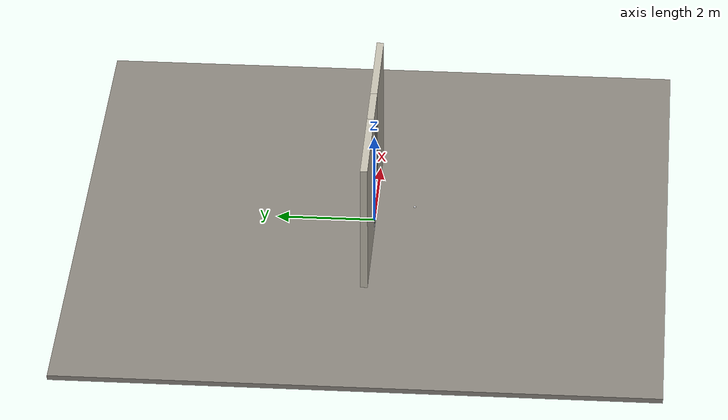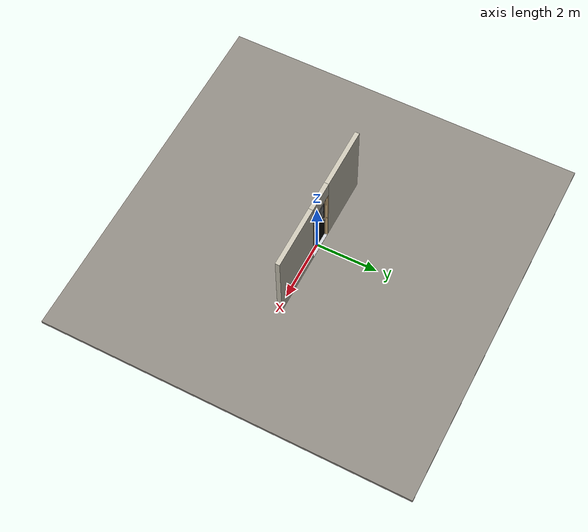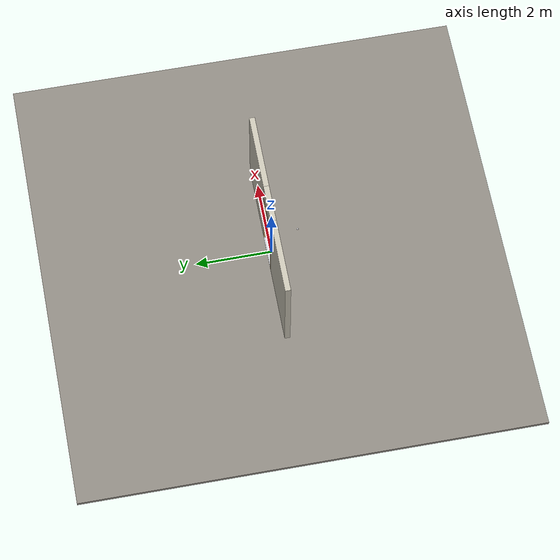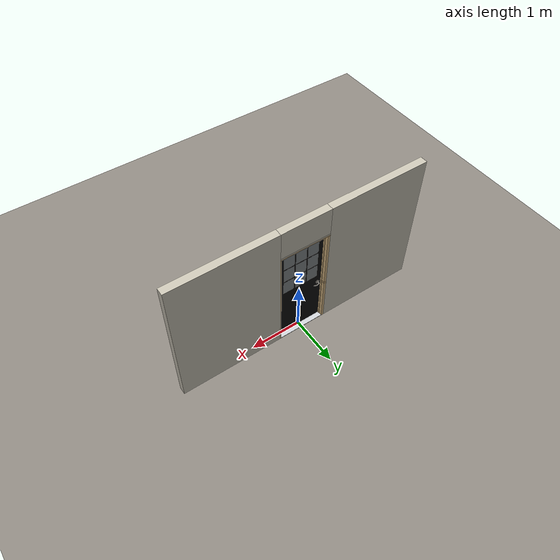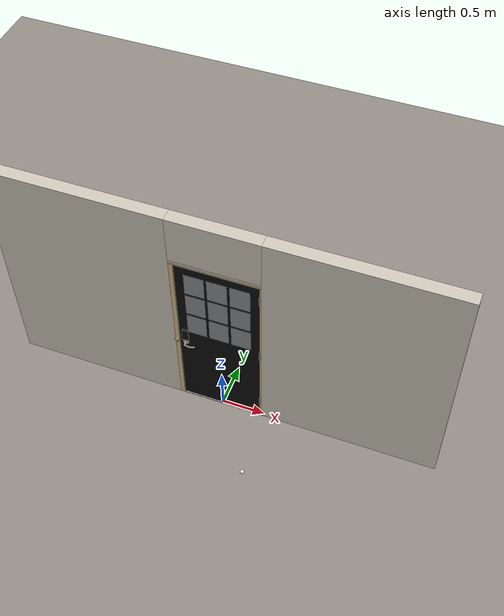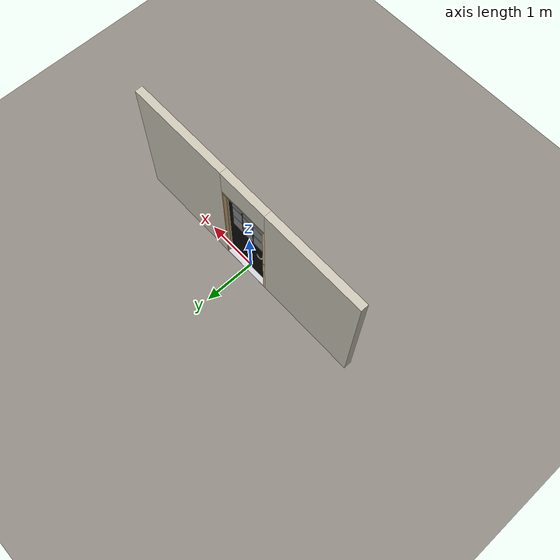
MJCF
<?xml version="1.0" ?>
<mujoco model="db0721_swing_single_simple">
  <compiler angle="radian" meshdir="../../hardware" texturedir="../../textures" autolimits="true" inertiafromgeom="false"/>
  <option timestep="0.002" integrator="implicitfast" cone="elliptic" impratio="10" noslip_iterations="3">
    <flag multiccd="enable"/>
  </option>
  <size memory="16M"/>
  <default>
    <geom condim="4" solref="0.005 1" solimp="0.95 0.99 0.001"/>
    <joint solreflimit="0.005 1" solimplimit="0.95 0.99 0.001"/>
    <tendon solreflimit="0.005 1"/>
    <equality solref="0.002 1"/>
  </default>
  <visual>
    <headlight ambient="0.4 0.4 0.4" diffuse="0.7 0.7 0.7" specular="0.2 0.2 0.2"/>
    <quality shadowsize="4096"/>
    <map znear="0.01" zfar="60"/>
  </visual>
  <asset>
    <mesh name="hinge_e22b26c0c1" file="hinge_e22b26c0c1.obj"/>
    <mesh name="hinge_jamb_e1d088f8dc" file="hinge_jamb_e1d088f8dc.obj"/>
    <mesh name="keypad_body_3b2d063948" file="keypad_body_3b2d063948.obj"/>
    <mesh name="lever_a61139b160" file="lever_a61139b160.obj"/>
    <material name="mat_floor" rgba="0.55 0.53 0.5 1" specular="0.2" shininess="0.15" reflectance="0"/>
    <material name="mat_wall" rgba="0.78 0.76 0.7 1" specular="0.2" shininess="0.1" reflectance="0"/>
    <material name="mat_leaf" rgba="0.04 0.04 0.04 1" specular="0.23" shininess="0.61" reflectance="0.02"/>
    <material name="mat_glass" rgba="0.9 0.93 0.95 0.6" specular="0.2" shininess="0.5" reflectance="0.1"/>
    <material name="mat_hinge" rgba="0.65 0.66 0.68 1" specular="0.74" shininess="0.5" reflectance="0.36"/>
    <material name="mat_op_nickel_satin" rgba="0.72 0.7 0.66 1" specular="0.8" shininess="0.65" reflectance="0.4"/>
    <material name="mat_trim" rgba="0.85 0.66 0.3 1" specular="0.8" shininess="0.75" reflectance="0.4"/>
    <material name="mat_keypad" rgba="0.05 0.05 0.05 1" specular="0.38" shininess="0.3" reflectance="0.12"/>
    <material name="mat_key" rgba="0.85 0.85 0.82 1" specular="0.2" shininess="0.5" reflectance="0"/>
    <material name="mat_bolt" rgba="0.85 0.66 0.3 1" specular="0.8" shininess="0.75" reflectance="0.4"/>
    <material name="mat_frame" rgba="0.82 0.7 0.5 1" specular="0.2" shininess="0.45" reflectance="0"/>
    <material name="mat_seal" rgba="0.1 0.1 0.1 1" specular="0.2" shininess="0.1" reflectance="0"/>
    <material name="mat_threshold" rgba="0.8 0.81 0.83 1" specular="0.8" shininess="0.6" reflectance="0.4"/>
    <material name="mat_peephole" rgba="0.85 0.66 0.3 1" specular="0.8" shininess="0.75" reflectance="0.4"/>
    <material name="mat_numbers" rgba="0.05 0.05 0.05 1" specular="0.38" shininess="0.3" reflectance="0.12"/>
    <material name="mat_stop" rgba="0.9 0.9 0.92 1" specular="0.8" shininess="0.9" reflectance="0.4"/>
    <texture name="skybox" type="skybox" builtin="gradient" rgb1="0.6 0.7 0.85" rgb2="0.9 0.92 0.95" width="256" height="256"/>
  </asset>
  <worldbody>
    <light name="sun" pos="1.5 -2.5 4" dir="-0.3 0.5 -0.8" directional="true" diffuse="0.8 0.8 0.8" specular="0.3 0.3 0.3" castshadow="true"/>
    <light name="fill" pos="-1.5 2.5 3" dir="0.3 -0.5 -0.7" directional="true" diffuse="0.35 0.35 0.4" castshadow="false"/>
    <camera name="robot_view" pos="0 -2.594313 1.812087" xyaxes="1 0 0 0 0.26963 0.962964" fovy="52"/>
    <camera name="far_view" pos="0 2.681312 1.812087" xyaxes="-1 0 0 0 -0.26963 0.962964" fovy="52"/>
    <camera name="iso" pos="-2.004737 -2.172262 2.234138" xyaxes="0.741536 -0.670913 0 0.242917 0.268487 0.932151" fovy="46"/>
    <camera name="detail_handle" pos="-0.1169 -0.723 1.245" xyaxes="0.97561 0.219512 0 -0.070934 0.315262 0.94635" fovy="38"/>
    <geom name="floor" type="box" size="6 6 0.05" pos="0 0 -0.05" material="mat_floor" group="0" contype="1" conaffinity="1" friction="0.8 0.005 0.0001" density="2400"/>
    <geom name="wall_left" type="box" size="0.99525 0.0725 1.3735" pos="-1.50475 0.0435 1.3735" material="mat_wall" group="0" contype="1" conaffinity="1" friction="0.6 0.005 0.0001" density="800"/>
    <geom name="wall_right" type="box" size="1.01025 0.0725 1.3735" pos="1.48975 0.0435 1.3735" material="mat_wall" group="0" contype="1" conaffinity="1" friction="0.6 0.005 0.0001" density="800"/>
    <geom name="wall_header" type="box" size="0.4945 0.0725 0.2755" pos="-0.015 0.0435 2.4715" material="mat_wall" group="0" contype="1" conaffinity="1" friction="0.6 0.005 0.0001" density="800"/>
    <geom name="hinge_0_jamb" type="mesh" mesh="hinge_jamb_e1d088f8dc" pos="0.4575 -0.029 0.267" quat="0 0 1 0" material="mat_hinge" group="1" contype="0" conaffinity="0" density="7850"/>
    <geom name="hinge_1_jamb" type="mesh" mesh="hinge_jamb_e1d088f8dc" pos="0.4575 -0.029 1.08" quat="0 0 1 0" material="mat_hinge" group="1" contype="0" conaffinity="0" density="7850"/>
    <geom name="hinge_2_jamb" type="mesh" mesh="hinge_jamb_e1d088f8dc" pos="0.4575 -0.029 1.963" quat="0 0 1 0" material="mat_hinge" group="1" contype="0" conaffinity="0" density="7850"/>
    <geom name="jamb_hinge" type="box" size="0.0095 0.0725 1.0735" pos="0.47 0.0435 1.0735" material="mat_frame" group="0" contype="1" conaffinity="1" friction="0.6 0.005 0.0001" density="400"/>
    <geom name="strike_965_wall_n" type="box" size="0.0245 0.054075 0.0167" pos="-0.485 0.061925 0.965" material="mat_frame" group="0" contype="1" conaffinity="1" friction="0.6 0.005 0.0001" density="400"/>
    <geom name="strike_965_wall_p" type="box" size="0.0245 0.008 0.0167" pos="-0.485 -0.01585 0.965" material="mat_frame" group="0" contype="1" conaffinity="1" friction="0.6 0.005 0.0001" density="400"/>
    <geom name="strike_965_ramp" type="box" size="0.0245 0.01649 0.0167" pos="-0.489636 -0.028673 0.965" quat="0.977148 0 0 -0.212558" material="mat_frame" group="0" contype="1" conaffinity="1" friction="0.12 0.005 0.0001" density="400"/>
    <geom name="strike_965_back" type="box" size="0.01615 0.00785 0.0167" pos="-0.49335 0 0.965" material="mat_frame" group="0" contype="1" conaffinity="1" friction="0.6 0.005 0.0001" density="400"/>
    <geom name="jamb_strike_0" type="box" size="0.0245 0.0725 0.47415" pos="-0.485 0.0435 0.47415" material="mat_frame" group="0" contype="1" conaffinity="1" friction="0.6 0.005 0.0001" density="400"/>
    <geom name="jamb_strike_1" type="box" size="0.0245 0.0725 0.58265" pos="-0.485 0.0435 1.56435" material="mat_frame" group="0" contype="1" conaffinity="1" friction="0.6 0.005 0.0001" density="400"/>
    <geom name="jamb_head" type="box" size="0.4945 0.0725 0.0095" pos="-0.015 0.0435 2.1565" material="mat_frame" group="0" contype="1" conaffinity="1" friction="0.6 0.005 0.0001" density="400"/>
    <geom name="head_stud" type="box" size="0.4945 0.0725 0.015" pos="-0.015 0.0435 2.181" material="mat_wall" group="0" contype="1" conaffinity="1" friction="0.6 0.005 0.0001" density="500"/>
    <geom name="stop_hinge" type="box" size="0.0055 0.016 1.0735" pos="0.455 0.0385 1.0735" material="mat_frame" group="0" contype="1" conaffinity="1" friction="0.6 0.005 0.0001" density="400"/>
    <geom name="stop_strike" type="box" size="0.0055 0.016 1.0735" pos="-0.455 0.0385 1.0735" material="mat_frame" group="0" contype="1" conaffinity="1" friction="0.6 0.005 0.0001" density="400"/>
    <geom name="stop_head" type="box" size="0.4605 0.016 0.0055" pos="0 0.0385 2.1415" material="mat_frame" group="0" contype="1" conaffinity="1" friction="0.6 0.005 0.0001" density="400"/>
    <geom name="seal_hinge" type="box" size="0.004 0.0015 1.0735" pos="0.4575 0.0235 1.0735" material="mat_seal" group="1" contype="0" conaffinity="0" density="1100"/>
    <geom name="seal_strike" type="box" size="0.004 0.0015 1.0735" pos="-0.4575 0.0235 1.0735" material="mat_seal" group="1" contype="0" conaffinity="0" density="1100"/>
    <geom name="seal_head" type="box" size="0.4405 0.0015 0.008" pos="0 0.0235 2.135" material="mat_seal" group="1" contype="0" conaffinity="0" density="1100"/>
    <geom name="threshold" type="box" size="0.4795 0.0725 0.0065" pos="0 0.0435 0.0065" material="mat_threshold" group="0" contype="1" conaffinity="1" friction="0.5 0.005 0.0001" density="2700"/>
    <geom name="floor_stop_dome" type="sphere" size="0.025" pos="0.545135 -0.801201 0" material="mat_stop" group="0" contype="1" conaffinity="1" friction="0.6 0.005 0.0001" density="7000"/>
    <site name="approach_point" pos="0 -1.5 0" quat="1 0 0 0" size="0.05" rgba="0.2 0.9 0.2 0.5" group="4"/>
    <site name="goal_point" pos="0 1.5 0" quat="1 0 0 0" size="0.05" rgba="0.2 0.9 0.2 0.5" group="4"/>
    <site name="door_plane_center" pos="0 0 1.0735" quat="1 0 0 0" size="0.02" rgba="0.2 0.9 0.2 0.5" group="4"/>
    <body name="leaf" pos="0.4605 0 0">
      <inertial pos="-0.451748 -0.001345 1.081532" mass="28.058856" quat="0.500245 -0.500389 -0.499588 -0.499777" diaginertia="2.151440777 10.448249761 12.588842959"/>
      <joint name="leaf_hinge" type="hinge" axis="0 0 1" pos="-0.003 -0.029 0" limited="true" range="0 1.658063" solreflimit="0.02 1" damping="0.318966" frictionloss="2.257697" armature="0.02"/>
      <geom name="leaf_slab" type="box" size="0.457 0.022 1.063" pos="-0.46 0 1.08" material="mat_leaf" group="0" contype="1" conaffinity="1" friction="0.4 0.005 0.0001" density="1"/>
      <geom name="leaf_glass_0" type="box" size="0.10882 0.0228 0.13882" pos="-0.21236 0 1.2826" material="mat_glass" group="1" contype="0" conaffinity="0" density="1"/>
      <geom name="leaf_glass_1" type="box" size="0.10882 0.0228 0.13882" pos="-0.46 0 1.2826" material="mat_glass" group="1" contype="0" conaffinity="0" density="1"/>
      <geom name="leaf_glass_2" type="box" size="0.10882 0.0228 0.13882" pos="-0.70764 0 1.2826" material="mat_glass" group="1" contype="0" conaffinity="0" density="1"/>
      <geom name="leaf_glass_3" type="box" size="0.10882 0.0228 0.13882" pos="-0.21236 0 1.59024" material="mat_glass" group="1" contype="0" conaffinity="0" density="1"/>
      <geom name="leaf_glass_4" type="box" size="0.10882 0.0228 0.13882" pos="-0.46 0 1.59024" material="mat_glass" group="1" contype="0" conaffinity="0" density="1"/>
      <geom name="leaf_glass_5" type="box" size="0.10882 0.0228 0.13882" pos="-0.70764 0 1.59024" material="mat_glass" group="1" contype="0" conaffinity="0" density="1"/>
      <geom name="leaf_glass_6" type="box" size="0.10882 0.0228 0.13882" pos="-0.21236 0 1.89788" material="mat_glass" group="1" contype="0" conaffinity="0" density="1"/>
      <geom name="leaf_glass_7" type="box" size="0.10882 0.0228 0.13882" pos="-0.46 0 1.89788" material="mat_glass" group="1" contype="0" conaffinity="0" density="1"/>
      <geom name="leaf_glass_8" type="box" size="0.10882 0.0228 0.13882" pos="-0.70764 0 1.89788" material="mat_glass" group="1" contype="0" conaffinity="0" density="1"/>
      <geom name="hinge_0" type="mesh" mesh="hinge_e22b26c0c1" pos="-0.003 -0.029 0.267" quat="0 0 1 0" material="mat_hinge" group="1" contype="0" conaffinity="0" density="7850"/>
      <geom name="hinge_1" type="mesh" mesh="hinge_e22b26c0c1" pos="-0.003 -0.029 1.08" quat="0 0 1 0" material="mat_hinge" group="1" contype="0" conaffinity="0" density="7850"/>
      <geom name="hinge_2" type="mesh" mesh="hinge_e22b26c0c1" pos="-0.003 -0.029 1.963" quat="0 0 1 0" material="mat_hinge" group="1" contype="0" conaffinity="0" density="7850"/>
      <geom name="leaf_keypad_body" type="mesh" mesh="keypad_body_3b2d063948" pos="-0.847 -0.022 1.085" quat="0.707107 0.707107 0 0" material="mat_keypad" group="0" contype="1" conaffinity="1" friction="0.6 0.005 0.0001" density="2000"/>
      <geom name="leaf_latch_bolt_faceplate" type="box" size="0.0006 0.01235 0.0267" pos="-0.9164 0 0.965" material="mat_bolt" group="1" contype="0" conaffinity="0" density="8500"/>
      <site name="leaf_edge_mid" pos="-0.917 0 1.063" quat="1 0 0 0" size="0.02" rgba="0.2 0.9 0.2 0.5" group="4"/>
      <body name="leaf_handle" pos="-0.847 0 0.965">
        <inertial pos="0.025007 0.057273 0" mass="0.41" quat="-0.235955 0 0 0.971764" diaginertia="0.000156759 0.000717302 0.000791484"/>
        <joint name="leaf_handle_hinge" type="hinge" axis="0 1 0" limited="true" range="0 0.87" damping="0.208392" frictionloss="0.052" stiffness="1" springref="-0.35" armature="0.01"/>
        <geom name="leaf_handle_lever_p" type="mesh" mesh="lever_a61139b160" pos="0 0.022 0" quat="0 0 0.707107 0.707107" material="mat_op_nickel_satin" group="1" contype="0" conaffinity="0" density="3000"/>
        <geom name="leaf_handle_lever_col_p" type="capsule" size="0.008 0.048" pos="0.056 0.077 0" quat="0.707107 0 0.707107 0" material="mat_op_nickel_satin" group="3" contype="1" conaffinity="1" rgba="0.8 0.3 0.3 0.25" friction="0.7 0.01 0.0001" density="3000"/>
        <geom name="leaf_handle_hub_col_p" type="cylinder" size="0.012 0.022" pos="0 0.052 0" quat="0.707107 -0.707107 0 0" material="mat_op_nickel_satin" group="3" contype="1" conaffinity="1" rgba="0.8 0.3 0.3 0.25" friction="0.6 0.005 0.0001" density="3000"/>
        <site name="leaf_handle_grip_p" pos="0.0896 0.077 0" quat="1 0 0 0" size="0.012" rgba="0.2 0.9 0.2 0.5" group="4"/>
      </body>
      <body name="leaf_handle_out" pos="-0.847 0 0.965">
        <inertial pos="0.025007 -0.057273 0" mass="0.41" quat="0.235955 0 0 0.971764" diaginertia="0.000156759 0.000717302 0.000791484"/>
        <joint name="leaf_handle_out_hinge" type="hinge" axis="0 1 0" limited="true" range="0 0.87" damping="0.208382" frictionloss="0.052" stiffness="1" springref="-0.35" armature="0.01"/>
        <geom name="leaf_handle_out_lever_n" type="mesh" mesh="lever_a61139b160" pos="0 -0.022 0" quat="0 0 -0.707107 0.707107" material="mat_op_nickel_satin" group="1" contype="0" conaffinity="0" density="3000"/>
        <geom name="leaf_handle_out_lever_col_n" type="capsule" size="0.008 0.048" pos="0.056 -0.077 0" quat="0.707107 0 0.707107 0" material="mat_op_nickel_satin" group="3" contype="1" conaffinity="1" rgba="0.8 0.3 0.3 0.25" friction="0.7 0.01 0.0001" density="3000"/>
        <geom name="leaf_handle_out_hub_col_n" type="cylinder" size="0.012 0.022" pos="0 -0.052 0" quat="0.707107 -0.707107 0 0" material="mat_op_nickel_satin" group="3" contype="1" conaffinity="1" rgba="0.8 0.3 0.3 0.25" friction="0.6 0.005 0.0001" density="3000"/>
        <site name="leaf_handle_out_grip_n" pos="0.0896 -0.077 0" quat="1 0 0 0" size="0.012" rgba="0.2 0.9 0.2 0.5" group="4"/>
      </body>
      <body name="leaf_latch_bolt" pos="-0.917 0 0.965">
        <inertial pos="0.00865 0 0" mass="0.041419" quat="0.92388 0.382683 0 0" diaginertia="0.000000798 0.000005598 0.000005598"/>
        <joint name="leaf_latch_bolt_slide" type="slide" axis="1 0 0" limited="true" range="0 0.0127" damping="2" frictionloss="0.3" stiffness="300" springref="-0.008333" armature="0.1"/>
        <geom name="leaf_latch_bolt_capsule" type="capsule" size="0.00635 0.015" pos="0.00865 0 0" quat="0.707107 0 -0.707107 0" material="mat_bolt" group="0" contype="1" conaffinity="1" friction="0.2 0.005 0.0001" density="8500"/>
      </body>
    </body>
  </worldbody>
  <tendon>
    <fixed name="leaf_latch_bolt_coupling" limited="true" range="0 10">
      <joint joint="leaf_latch_bolt_slide" coef="1"/>
      <joint joint="leaf_handle_hinge" coef="-0.015679"/>
      <joint joint="leaf_handle_out_hinge" coef="-0.015679"/>
    </fixed>
  </tendon>
  <sensor>
    <jointpos name="leaf_hinge_pos" joint="leaf_hinge"/>
    <jointvel name="leaf_hinge_vel" joint="leaf_hinge"/>
    <jointpos name="leaf_handle_hinge_pos" joint="leaf_handle_hinge"/>
    <jointvel name="leaf_handle_hinge_vel" joint="leaf_handle_hinge"/>
    <jointpos name="leaf_handle_out_hinge_pos" joint="leaf_handle_out_hinge"/>
    <jointvel name="leaf_handle_out_hinge_vel" joint="leaf_handle_out_hinge"/>
    <jointpos name="leaf_latch_bolt_slide_pos" joint="leaf_latch_bolt_slide"/>
    <jointvel name="leaf_latch_bolt_slide_vel" joint="leaf_latch_bolt_slide"/>
  </sensor>
</mujoco>
